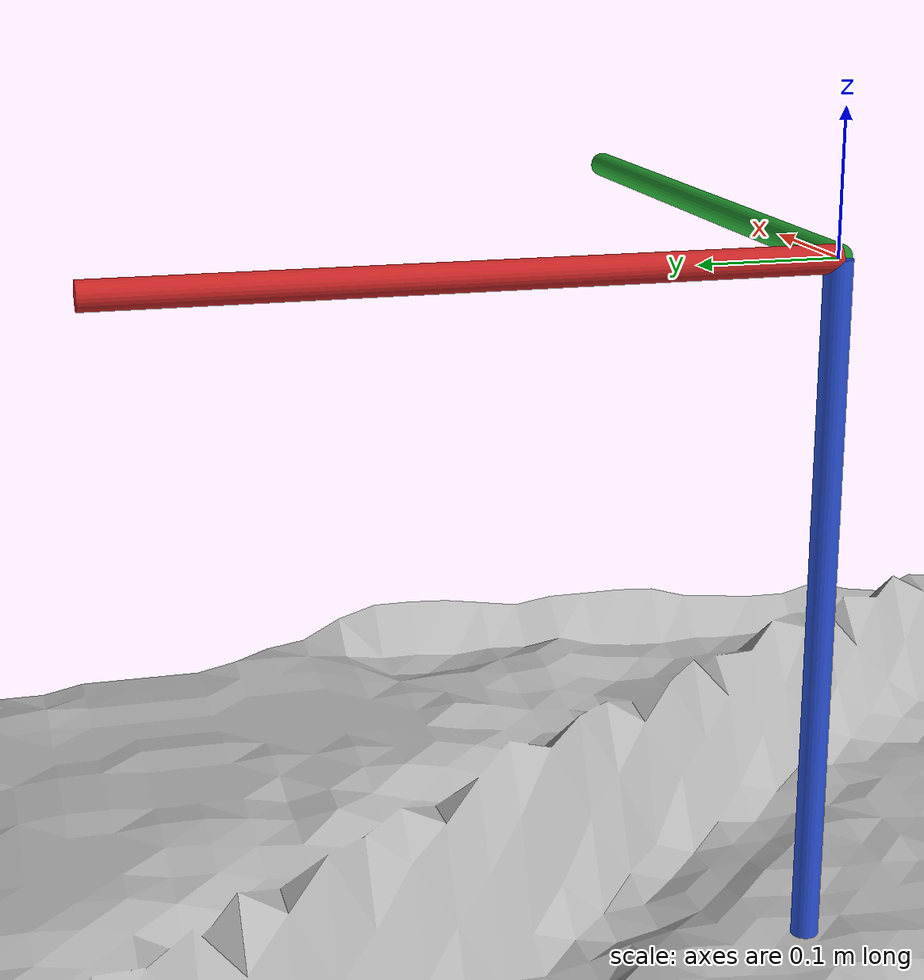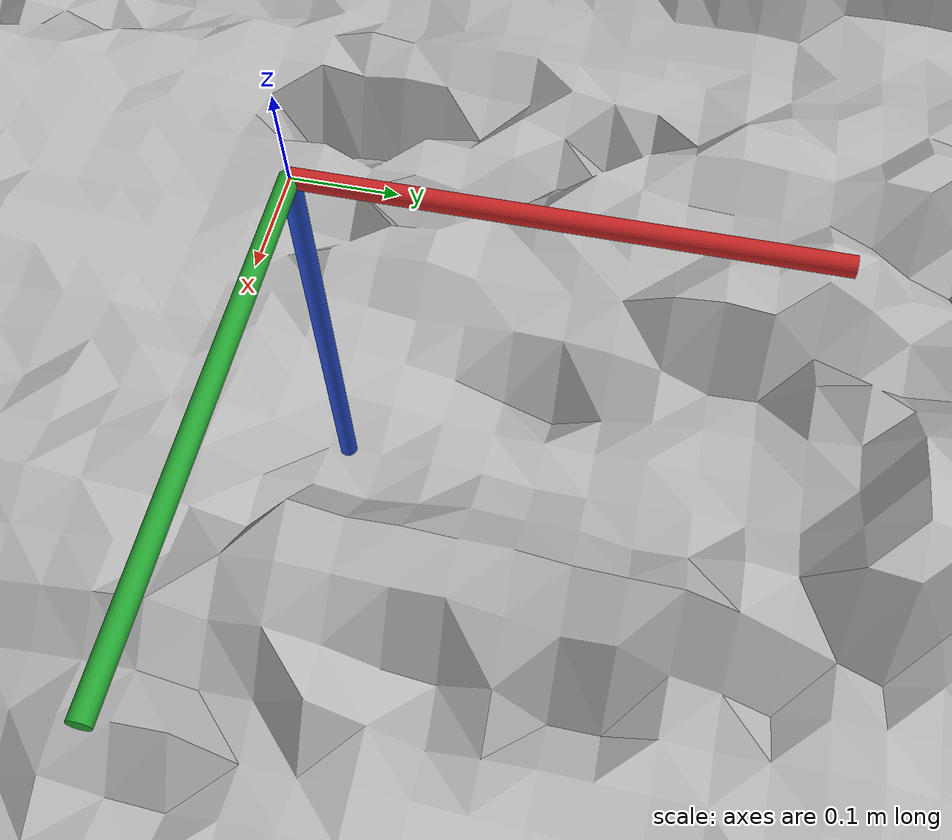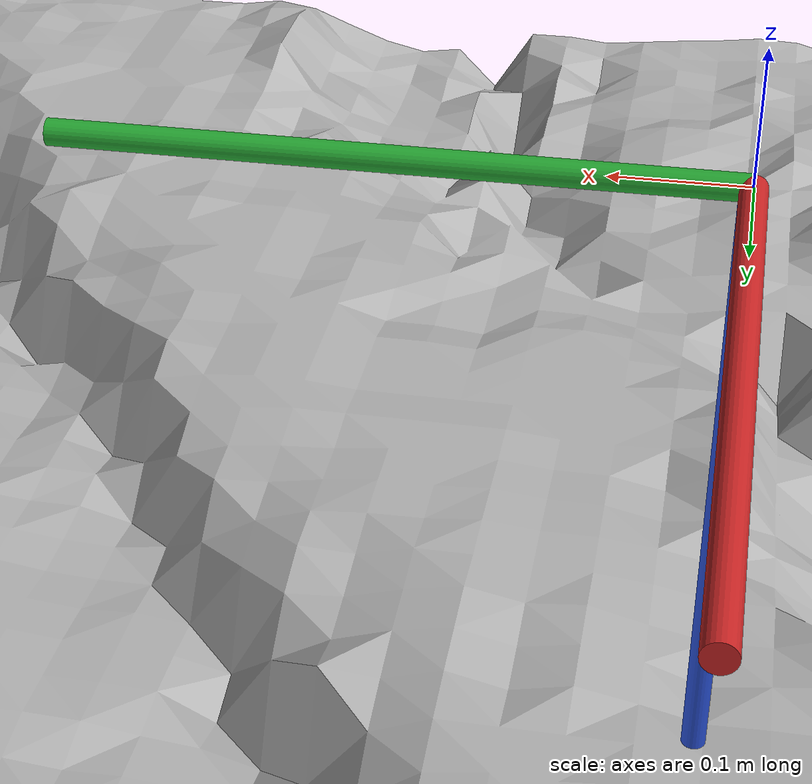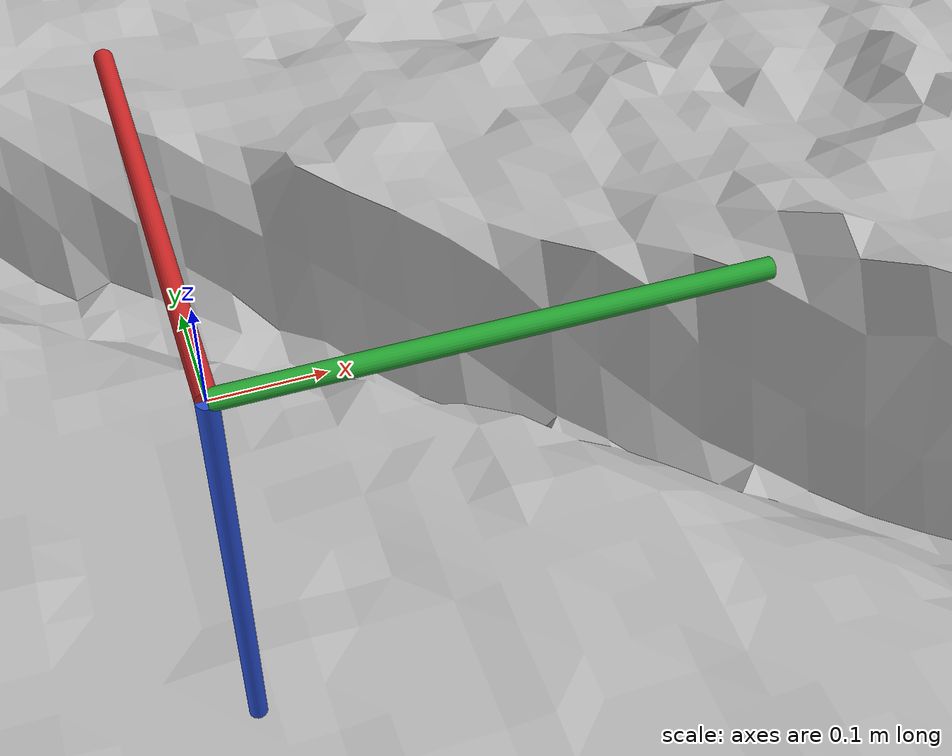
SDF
<sdf version="1.4">
 <world name="oceans_waves">
  <physics name="default_physics" default="true" type="ode">
   <max_step_size>0.002</max_step_size>
   <real_time_factor>1</real_time_factor>
   <real_time_update_rate>500</real_time_update_rate>
  </physics>
  <scene>
   <ambient>0.01 0.01 0.01 1.0</ambient>
   <sky><clouds><speed>12</speed></clouds></sky>
   <shadows>1</shadows>
  </scene>
  <spherical_coordinates>
   <latitude_deg>56.71897669633431</latitude_deg>
   <longitude_deg>3.515625</longitude_deg>
  </spherical_coordinates>
  <light type="directional" name="sun1">
   <pose>50 0 150 0 0 0</pose>
   <diffuse>1 1 1 1</diffuse>
   <specular>.1 .1 .1 1</specular>
   <direction>0.3 0.3 -1</direction>
   <cast_shadows>false</cast_shadows>
  </light>
  <light type="directional" name="sun_diffuse">
   <pose>-50 0 -150 0 0 0</pose>
   <diffuse>0.6 0.6 0.6 1</diffuse>
   <specular>0 0 0 1</specular>
   <direction>-0.3 -0.3 -1</direction>
   <cast_shadows>false</cast_shadows>
  </light>
  <include><uri>model://ned_frame</uri></include>
  <include><uri>model://sand_heightmap</uri><pose>0 0 -95 0 0 0</pose></include>
  <plugin name="underwater_current_plugin" filename="libuuv_underwater_current_ros_plugin.so">
   <namespace>hydrodynamics</namespace>
   <constant_current>
    <topic>current_velocity</topic>
    <velocity><mean>0</mean><min>0</min><max>5</max><mu>0.0</mu><noiseAmp>0.0</noiseAmp></velocity>
    <horizontal_angle>
     <mean>0</mean>
     <min>-3.141592653589793238</min>
     <max>3.141592653589793238</max>
     <mu>0.0</mu>
     <noiseAmp>0.0</noiseAmp>
    </horizontal_angle>
    <vertical_angle>
     <mean>0</mean>
     <min>-3.141592653589793238</min>
     <max>3.141592653589793238</max>
     <mu>0.0</mu>
     <noiseAmp>0.0</noiseAmp>
    </vertical_angle>
   </constant_current>
  </plugin>
  <plugin name="sc_interface" filename="libuuv_sc_ros_interface_plugin.so"/>
 </world>
</sdf>

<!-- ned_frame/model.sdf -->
<sdf version='1.5'>
    <model name="world_ned">

      <pose>0 0 0 0 0 0</pose>
      <static>true</static>

      <link name="world_ned">
        <gravity>0</gravity>
        <pose>0 0 0 3.14159265359 0 1.5707963267948966</pose>

        <visual name="N_visual">
          <pose>0.25 0 0 1.5707963267948966 0 1.5707963267948966</pose>
          <geometry>
            <cylinder>
              <radius>0.01</radius>
              <length>0.5</length>
            </cylinder>
          </geometry>
          <material>
            <script>
              <uri>file://media/materials/scripts/gazebo.material</uri>
              <name>Gazebo/Red</name>
            </script>
          </material>
        </visual>

        <visual name="E_visual">
          <pose>0 0.25 0 1.5707963267948966 0 0</pose>
          <geometry>
            <cylinder>
              <radius>0.01</radius>
              <length>0.5</length>
            </cylinder>
          </geometry>
          <material>
            <script>
              <uri>file://media/materials/scripts/gazebo.material</uri>
              <name>Gazebo/Green</name>
            </script>
          </material>
        </visual>

        <visual name="D_visual">
          <pose>0 0 0.25 0 0 0</pose>
          <geometry>
            <cylinder>
              <radius>0.01</radius>
              <length>0.5</length>
            </cylinder>
          </geometry>
          <material>
            <script>
              <uri>file://media/materials/scripts/gazebo.material</uri>
              <name>Gazebo/Blue</name>
            </script>
          </material>
        </visual>
      </link>
    </model>
</sdf>

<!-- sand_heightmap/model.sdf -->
<sdf version="1.5">
  <model name="sand_heightmap">
    <static>true</static>
    <link name="link">
      <collision name="ground">
        <pose>0 0 0 0 0 0</pose>
        <geometry>
          <mesh><uri>model://sand_heightmap/meshes/heightmap.dae</uri></mesh>
        </geometry>
      </collision>

      <visual name="ground_sand">
        <cast_shadows>true</cast_shadows>
        <pose>0 0 0 0 0 0</pose>
        <geometry>
          <mesh><uri>model://sand_heightmap/meshes/heightmap.dae</uri></mesh>
        </geometry>
        <material>
          <script>
            <uri>file://Media/materials/scripts/sand.material</uri>
            <name>BioSortWorld/SandAndStones</name>
          </script>
          <emissive>
            0.6 0.6 0.6 1.0
          </emissive>
        </material>
      </visual>
    </link>
  </model>
</sdf>
